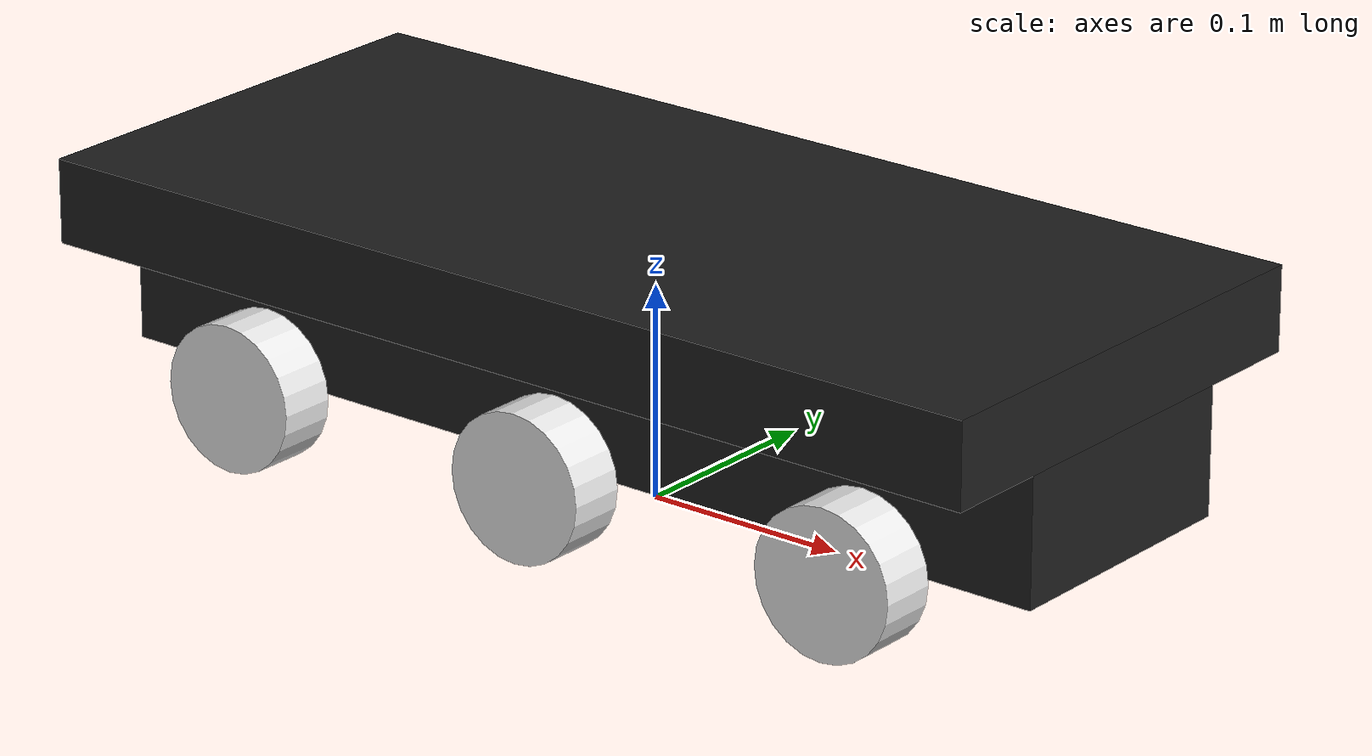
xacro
<?xml version="1.0"?>
<robot xmlns:xacro="http://www.ros.org/wiki/xacro">

    <xacro:property name="chassi_length" value="0.5" />
    <xacro:property name="chassi_width" value="0.13" />
    <xacro:property name="chassi_height" value="0.06" />

    <xacro:property name="chassi_top_length" value="0.5" />
    <xacro:property name="chassi_top_width" value="0.23" />
    <xacro:property name="chassi_top_height" value="0.04" />

    <xacro:property name="wheel_radius" value="0.035" />
    <xacro:property name="wheel_length" value="0.028" />

    <!-- Links-->

    <link name="base_footprint" />

    <!-- Chassis Aufbau-->

    <link name="chassis">
        <visual>
            <origin xyz="0.0 0.0 ${chassi_height/2}" rpy="0.0 0.0 0.0" />
            <geometry>
                <box size="${chassi_length} ${chassi_width} ${chassi_height}" />
            </geometry>
            <material name="black" />
        </visual>
        <collision>
            <origin xyz="0.0 0.0 ${chassi_height/2}" rpy="0.0 0.0 0.0" />
            <geometry>
                <box size="${chassi_length} ${chassi_width} ${chassi_height}" />
            </geometry>
        </collision>
        <xacro:box_inertia m="3.0" l="${chassi_length}" w="${chassi_width}" h="${chassi_height}"
            xyz="0.0 0.0 ${chassi_height/2}" rpy="0 0 0" />
    </link>
    <gazebo reference="chassis">
        <material>Gazebo/Grass</material>
    </gazebo>

    <link name="chassis_top">
        <visual>
            <origin xyz="0.0 0.0 ${chassi_top_height/2}" rpy="0.0 0.0 0.0" />
            <geometry>
                <box size="${chassi_top_length} ${chassi_top_width} ${chassi_top_height}" />
            </geometry>
            <material name="black" />
        </visual>
        <collision>
            <origin xyz="0.0 0.0 ${chassi_top_height/2}" rpy="0.0 0.0 0.0" />
            <geometry>
                <box size="${chassi_top_length} ${chassi_top_width} ${chassi_top_height}" />
            </geometry>
        </collision>
        <xacro:box_inertia m="1.0" l="${chassi_top_length}" w="${chassi_top_width}"
            h="${chassi_top_height}"
            xyz="0.0 0.0 ${chassi_top_height/2}" rpy="0 ${pi/2} 0" />
    </link>
    <gazebo reference="chassis_top">
        <material>Gazebo/Grass</material>
    </gazebo>

    <!-- WHEELS-->

    <xacro:macro name="wheel_link" params="prefix ">
        <link name="${prefix}_wheel">
            <visual>
                <origin xyz="0.0 0.0 0.0" rpy="${pi/2} 0.0 0.0" />
                <geometry>
                    <cylinder radius="${wheel_radius}" length="${wheel_length}" />
                </geometry>
                <material name="white" />
            </visual>
            <collision>
                <origin xyz="0.0 0.0 0.0" rpy="${pi/2} 0.0 0.0" />
                <geometry>
                    <sphere radius="${wheel_radius}" />
                </geometry>
            </collision>
            <xacro:cylinder_inertia m="0.3" r="${wheel_radius/2}" h="${wheel_length/2}"
                xyz="0 0 0" rpy="${pi/2} 0 0" />
        </link>
        <gazebo reference="${prefix}_wheel">
            <material>Gazebo/Grey</material>
            <mu1>100000000000000.0</mu1>
            <mu2>100000000000000.0</mu2>
            <kp>1000000000000.0</kp>
            <kd>10.0</kd>
            <minDepth>0.001</minDepth>
            <maxVel>0.1</maxVel>
            <fdir1>1 0 0</fdir1>
        </gazebo>
    </xacro:macro>

    <xacro:wheel_link prefix="right" />
    <xacro:wheel_link prefix="left" />

    <xacro:macro name="caster_wheel_link" params="prefix ">
        <link name="${prefix}_caster_wheel">
            <visual>
                <origin xyz="0.0 0.0 0.0" rpy="${pi/2} 0.0 0.0" />
                <geometry>
                    <cylinder radius="${wheel_radius}" length="${wheel_length}" />
                </geometry>
                <material name="white" />
            </visual>
            <collision>
                <origin xyz="0.0 0.0 0.0" rpy="${pi/2} 0.0 0.0" />
                <geometry>
                    <sphere radius="${wheel_radius}" />
                </geometry>
            </collision>
            <xacro:cylinder_inertia m="0.3" r="${wheel_radius/2}" h="${wheel_length/2}"
                xyz="0 0 0" rpy="${pi/2} 0 0" />
        </link>
        <gazebo reference="${prefix}_caster_wheel">
            <material>Gazebo/Grey</material>
            <mu1>0.01</mu1>
            <mu2>0.01</mu2>
            <kp>1000000.0</kp>
            <kd>100.0</kd>
            <minDepth>0.001</minDepth>
            <maxVel>0.1</maxVel>
        </gazebo>
    </xacro:macro>

    <xacro:caster_wheel_link prefix="left_f" />
    <xacro:caster_wheel_link prefix="left_r" />
    <xacro:caster_wheel_link prefix="right_f" />
    <xacro:caster_wheel_link prefix="right_r" />

    <!-- Joints Fixed -->

    <joint name="base_link" type="fixed">
        <parent link="base_footprint" />
        <child link="chassis" />
        <origin xyz="0.0 0.0 ${wheel_radius}" rpy="0.0 0.0 0.0" />
    </joint>

    <joint name="chassieAufbau" type="fixed">
        <parent link="chassis" />
        <child link="chassis_top" />
        <origin xyz="0.0 0.0 ${chassi_height}" rpy="0.0 0.0 0.0" />
    </joint>

    <joint name="joint_rf" type="fixed">
        <parent link="chassis" />
        <child link="right_f_caster_wheel" />
        <origin xyz="${chassi_length/3} -${chassi_width/2 + wheel_length/2 + 0.005} 0" rpy="0 0 0" />
    </joint>

    <joint name="joint_rr" type="fixed">
        <parent link="chassis" />
        <child link="right_r_caster_wheel" />
        <origin xyz="-${chassi_length/3} -${chassi_width/2 + wheel_length/2 + 0.005} 0" rpy="0 0 0" />
    </joint>

    <joint name="joint_lf" type="fixed">
        <parent link="chassis" />
        <child link="left_f_caster_wheel" />
        <origin xyz="${chassi_length/3} ${chassi_width/2 + wheel_length/2 + 0.005} 0" rpy="0 0 0" />
    </joint>

    <joint name="joint_lr" type="fixed">
        <parent link="chassis" />
        <child link="left_r_caster_wheel" />
        <origin xyz="-${chassi_length/3} ${chassi_width/2 + wheel_length/2 + 0.005} 0" rpy="0 0 0" />
    </joint>

    <!-- Joints Moving-->

    <joint name="joint_1" type="continuous">
        <parent link="chassis" />
        <child link="right_wheel" />
        <axis xyz="0 1 0" />
        <origin xyz="0 -${chassi_width/2 + wheel_length/2 + 0.005} 0" rpy="0 0 0" />
    </joint>

    <joint name="joint_2" type="continuous">
        <parent link="chassis" />
        <child link="left_wheel" />
        <axis xyz="0 1 0" />
        <origin xyz="0 ${chassi_width/2+ wheel_length/2 + 0.005} 0" rpy="0 0 0" />
    </joint>

</robot>
